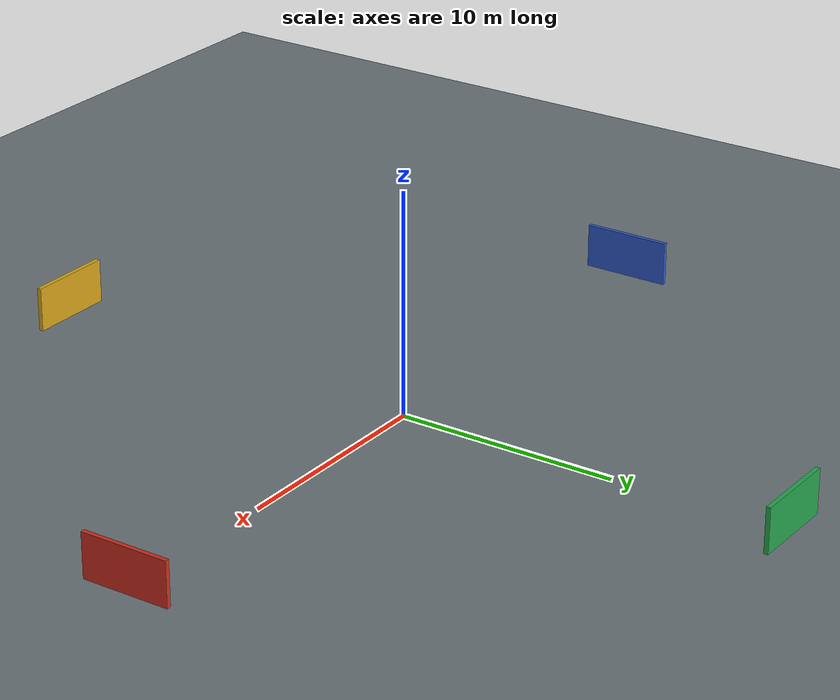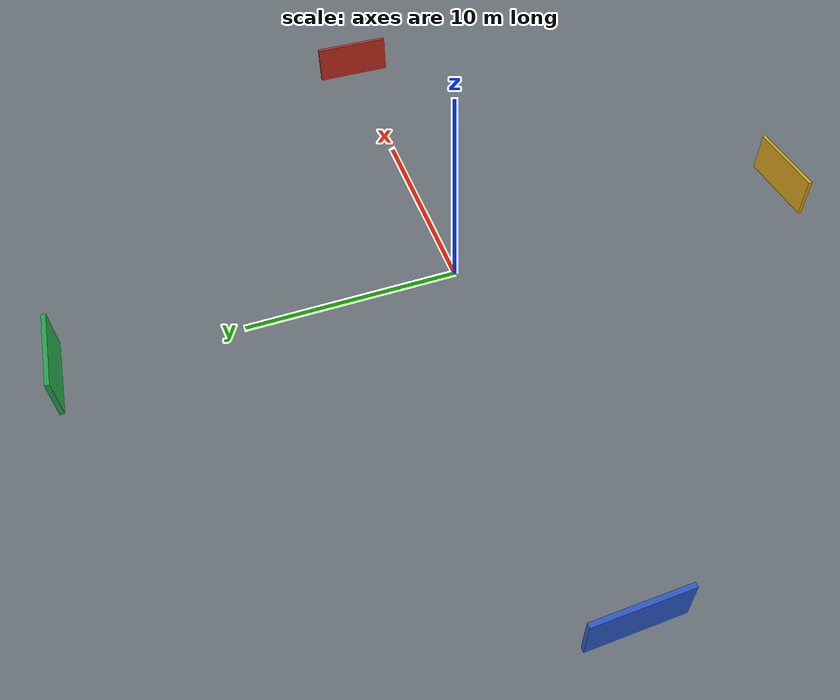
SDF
<?xml version="1.0"?>
<!-- Chassis is inserted by swerve_platform.py from the launch-selected YAML. -->
<sdf version="1.9">
  <world name="swerve_odin">
    <gravity>0 0 -9.81</gravity>
    <physics name="default" type="ignored"><max_step_size>0.002</max_step_size><real_time_factor>1</real_time_factor></physics>
    <plugin filename="gz-sim-physics-system" name="gz::sim::systems::Physics"/>
    <plugin filename="gz-sim-user-commands-system" name="gz::sim::systems::UserCommands"/>
    <plugin filename="gz-sim-scene-broadcaster-system" name="gz::sim::systems::SceneBroadcaster"/>
    <plugin filename="gz-sim-sensors-system" name="gz::sim::systems::Sensors"><render_engine>ogre2</render_engine></plugin>
    <plugin filename="gz-sim-imu-system" name="gz::sim::systems::Imu"/>
    <scene><ambient>0.65 0.65 0.65 1</ambient><background>0.72 0.79 0.86 1</background><shadows>true</shadows></scene>
    <light name="sun" type="directional"><pose>0 0 10 0 0 0</pose><direction>-0.3 0.4 -1</direction><diffuse>0.85 0.85 0.85 1</diffuse><specular>0.2 0.2 0.2 1</specular></light>
    <model name="ground"><static>true</static><link name="ground">
      <collision name="ground_collision"><geometry><plane><normal>0 0 1</normal><size>100 100</size></plane></geometry><surface><friction><ode><mu>1</mu><mu2>1</mu2></ode></friction></surface></collision>
      <visual name="ground_visual"><geometry><plane><normal>0 0 1</normal><size>100 100</size></plane></geometry><material><ambient>0.42 0.46 0.48 1</ambient><diffuse>0.42 0.46 0.48 1</diffuse></material></visual>
    </link></model>
    <!-- Colored cardinal targets leave a 36 m square for driving checks. -->
    <model name="front_target"><static>true</static><pose>18 0 1 0 0 0</pose><link name="target">
      <collision name="target_collision"><geometry><box><size>0.2 4 2</size></box></geometry></collision>
      <visual name="target_visual"><geometry><box><size>0.2 4 2</size></box></geometry><material><ambient>0.8 0.18 0.12 1</ambient><diffuse>0.8 0.18 0.12 1</diffuse></material></visual>
    </link></model>
    <model name="rear_target"><static>true</static><pose>-18 0 1 0 0 0</pose><link name="target">
      <collision name="target_collision"><geometry><box><size>0.2 4 2</size></box></geometry></collision>
      <visual name="target_visual"><geometry><box><size>0.2 4 2</size></box></geometry><material><ambient>0.18 0.35 0.8 1</ambient><diffuse>0.18 0.35 0.8 1</diffuse></material></visual>
    </link></model>
    <model name="left_target"><static>true</static><pose>0 18 1 0 0 0</pose><link name="target">
      <collision name="target_collision"><geometry><box><size>4 0.2 2</size></box></geometry></collision>
      <visual name="target_visual"><geometry><box><size>4 0.2 2</size></box></geometry><material><ambient>0.15 0.65 0.3 1</ambient><diffuse>0.15 0.65 0.3 1</diffuse></material></visual>
    </link></model>
    <model name="right_target"><static>true</static><pose>0 -18 1 0 0 0</pose><link name="target">
      <collision name="target_collision"><geometry><box><size>4 0.2 2</size></box></geometry></collision>
      <visual name="target_visual"><geometry><box><size>4 0.2 2</size></box></geometry><material><ambient>0.85 0.65 0.1 1</ambient><diffuse>0.85 0.65 0.1 1</diffuse></material></visual>
    </link></model>
  </world>
</sdf>
